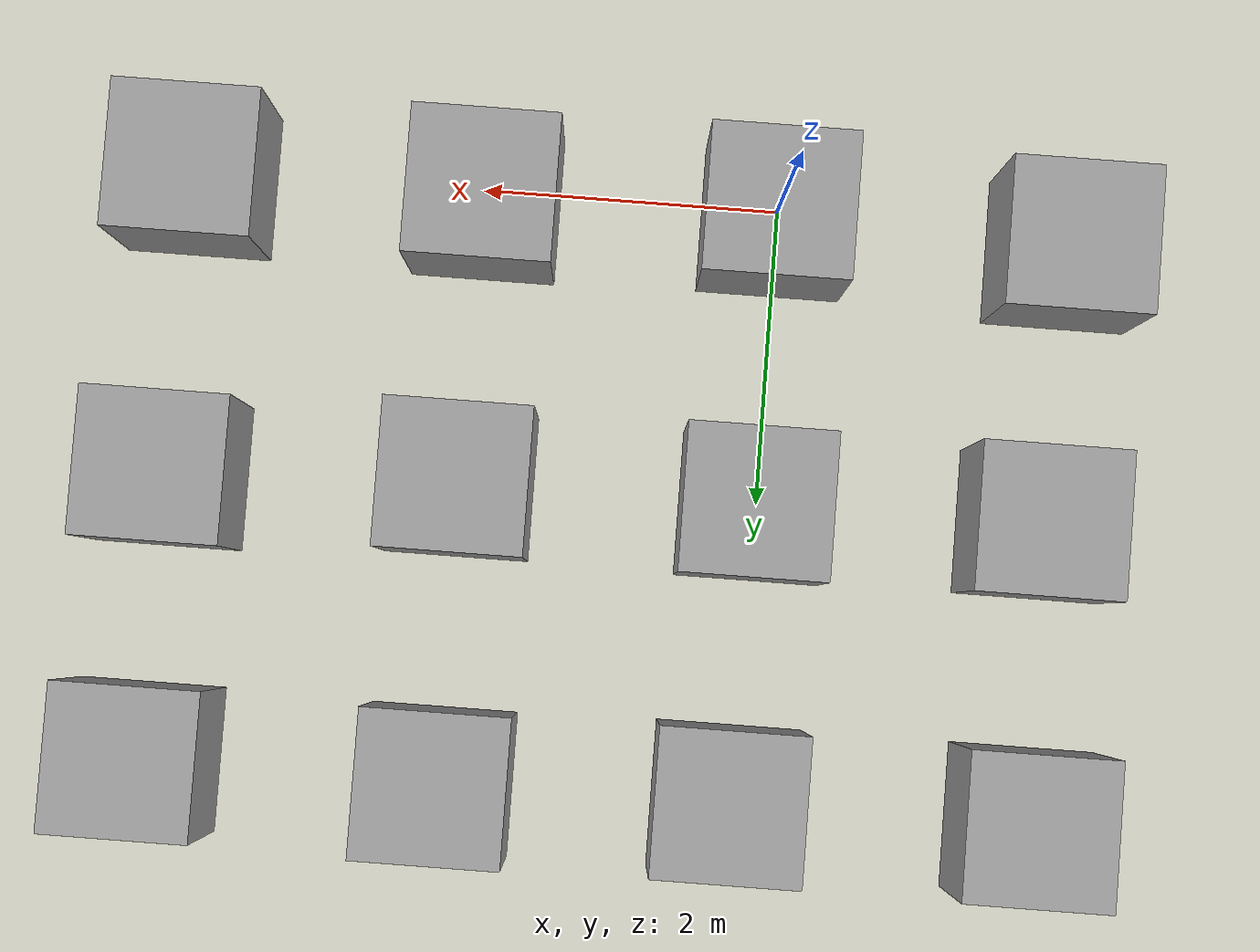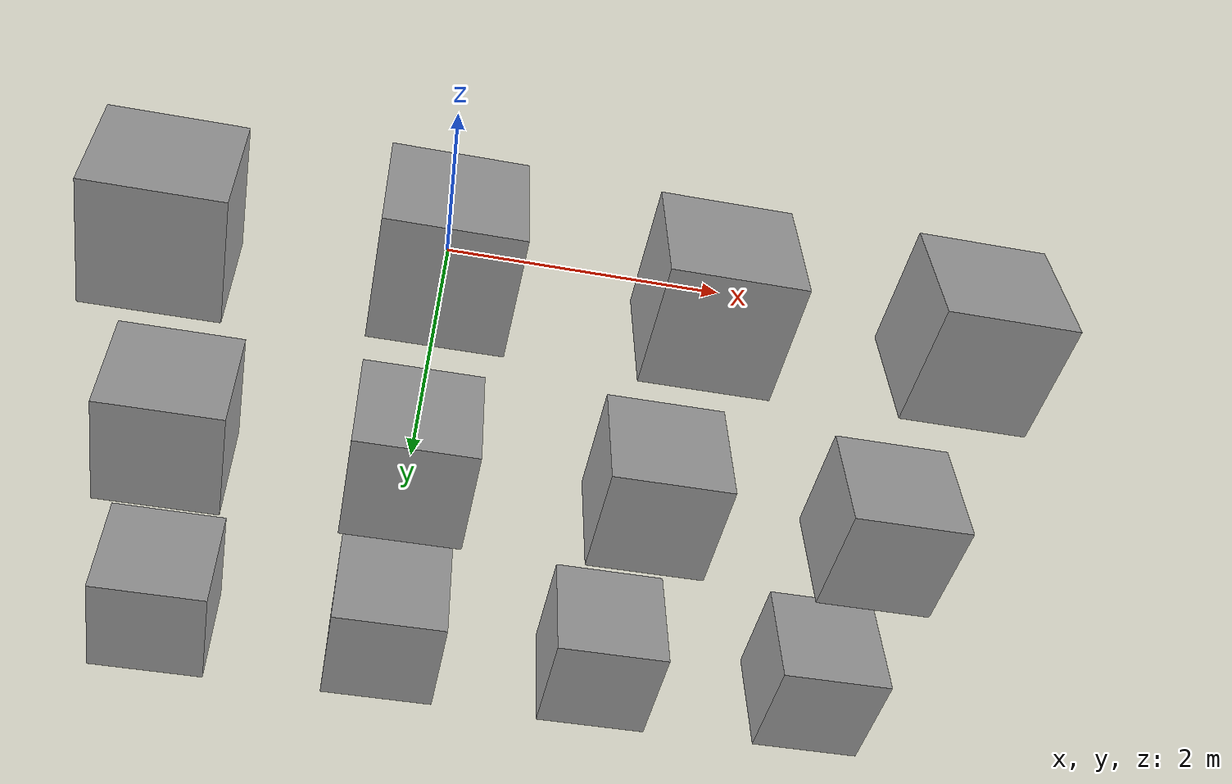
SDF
<?xml version='1.0'?>
<sdf version='1.6'>
  <model name='rnpillmining'>
    <link name='link'>
      <inertial>
        <mass>1</mass>
        <inertia>
          <ixx>0.166667</ixx>
          <ixy>0</ixy>
          <ixz>0</ixz>
          <iyy>0.166667</iyy>
          <iyz>0</iyz>
          <izz>0.166667</izz>
        </inertia>
        <pose frame=''>0 0 0 0 -0 0</pose>
      </inertial>
      <self_collide>0</self_collide>
      <enable_wind>0</enable_wind>
      <kinematic>0</kinematic>
      <pose frame=''>0 0 0 0 -0 0</pose>
      <gravity>1</gravity>
      <visual name='visual'>
        <geometry>
          <box>
            <size>1 1 1</size>
          </box>
        </geometry>
        <material>
          <script>
            <name>Gazebo/Grey</name>
            <uri>file://media/materials/scripts/gazebo.material</uri>
          </script>
          <shader type='vertex'>
            <normal_map>__default__</normal_map>
          </shader>
        </material>
        <pose frame=''>0 0 0 0 -0 0</pose>
        <transparency>0</transparency>
        <cast_shadows>1</cast_shadows>
      </visual>
      <collision name='collision'>
        <laser_retro>0</laser_retro>
        <max_contacts>10</max_contacts>
        <pose frame=''>0 0 0 0 -0 0</pose>
        <geometry>
          <box>
            <size>1 1 1</size>
          </box>
        </geometry>
        <surface>
          <friction>
            <ode>
              <mu>1</mu>
              <mu2>1</mu2>
              <fdir1>0 0 0</fdir1>
              <slip1>0</slip1>
              <slip2>0</slip2>
            </ode>
            <torsional>
              <coefficient>1</coefficient>
              <patch_radius>0</patch_radius>
              <surface_radius>0</surface_radius>
              <use_patch_radius>1</use_patch_radius>
              <ode>
                <slip>0</slip>
              </ode>
            </torsional>
          </friction>
          <bounce>
            <restitution_coefficient>0</restitution_coefficient>
            <threshold>1e+06</threshold>
          </bounce>
          <contact>
            <collide_without_contact>0</collide_without_contact>
            <collide_without_contact_bitmask>1</collide_without_contact_bitmask>
            <collide_bitmask>1</collide_bitmask>
            <ode>
              <soft_cfm>0</soft_cfm>
              <soft_erp>0.2</soft_erp>
              <kp>1e+13</kp>
              <kd>1</kd>
              <max_vel>0.01</max_vel>
              <min_depth>0</min_depth>
            </ode>
            <bullet>
              <split_impulse>1</split_impulse>
              <split_impulse_penetration_threshold>-0.01</split_impulse_penetration_threshold>
              <soft_cfm>0</soft_cfm>
              <soft_erp>0.2</soft_erp>
              <kp>1e+13</kp>
              <kd>1</kd>
            </bullet>
          </contact>
        </surface>
      </collision>
    </link>
    <link name='link_clone'>
      <inertial>
        <mass>1</mass>
        <inertia>
          <ixx>0.166667</ixx>
          <ixy>0</ixy>
          <ixz>0</ixz>
          <iyy>0.166667</iyy>
          <iyz>0</iyz>
          <izz>0.166667</izz>
        </inertia>
        <pose frame=''>0 0 0 0 -0 0</pose>
      </inertial>
      <self_collide>0</self_collide>
      <enable_wind>0</enable_wind>
      <kinematic>0</kinematic>
      <pose frame=''>0.009532 2.00132 0 0 -0 0</pose>
      <gravity>1</gravity>
      <visual name='visual'>
        <geometry>
          <box>
            <size>1 1 1</size>
          </box>
        </geometry>
        <material>
          <script>
            <name>Gazebo/Grey</name>
            <uri>file://media/materials/scripts/gazebo.material</uri>
          </script>
          <shader type='vertex'>
            <normal_map>__default__</normal_map>
          </shader>
        </material>
        <pose frame=''>0 0 0 0 -0 0</pose>
        <transparency>0</transparency>
        <cast_shadows>1</cast_shadows>
      </visual>
      <collision name='collision'>
        <laser_retro>0</laser_retro>
        <max_contacts>10</max_contacts>
        <pose frame=''>0 0 0 0 -0 0</pose>
        <geometry>
          <box>
            <size>1 1 1</size>
          </box>
        </geometry>
        <surface>
          <friction>
            <ode>
              <mu>1</mu>
              <mu2>1</mu2>
              <fdir1>0 0 0</fdir1>
              <slip1>0</slip1>
              <slip2>0</slip2>
            </ode>
            <torsional>
              <coefficient>1</coefficient>
              <patch_radius>0</patch_radius>
              <surface_radius>0</surface_radius>
              <use_patch_radius>1</use_patch_radius>
              <ode>
                <slip>0</slip>
              </ode>
            </torsional>
          </friction>
          <bounce>
            <restitution_coefficient>0</restitution_coefficient>
            <threshold>1e+06</threshold>
          </bounce>
          <contact>
            <collide_without_contact>0</collide_without_contact>
            <collide_without_contact_bitmask>1</collide_without_contact_bitmask>
            <collide_bitmask>1</collide_bitmask>
            <ode>
              <soft_cfm>0</soft_cfm>
              <soft_erp>0.2</soft_erp>
              <kp>1e+13</kp>
              <kd>1</kd>
              <max_vel>0.01</max_vel>
              <min_depth>0</min_depth>
            </ode>
            <bullet>
              <split_impulse>1</split_impulse>
              <split_impulse_penetration_threshold>-0.01</split_impulse_penetration_threshold>
              <soft_cfm>0</soft_cfm>
              <soft_erp>0.2</soft_erp>
              <kp>1e+13</kp>
              <kd>1</kd>
            </bullet>
          </contact>
        </surface>
      </collision>
    </link>
    <link name='link_clone_0'>
      <inertial>
        <mass>1</mass>
        <inertia>
          <ixx>0.166667</ixx>
          <ixy>0</ixy>
          <ixz>0</ixz>
          <iyy>0.166667</iyy>
          <iyz>0</iyz>
          <izz>0.166667</izz>
        </inertia>
        <pose frame=''>0 0 0 0 -0 0</pose>
      </inertial>
      <self_collide>0</self_collide>
      <enable_wind>0</enable_wind>
      <kinematic>0</kinematic>
      <pose frame=''>0.051159 4.01041 0 0 -0 0</pose>
      <gravity>1</gravity>
      <visual name='visual'>
        <geometry>
          <box>
            <size>1 1 1</size>
          </box>
        </geometry>
        <material>
          <script>
            <name>Gazebo/Grey</name>
            <uri>file://media/materials/scripts/gazebo.material</uri>
          </script>
          <shader type='vertex'>
            <normal_map>__default__</normal_map>
          </shader>
        </material>
        <pose frame=''>0 0 0 0 -0 0</pose>
        <transparency>0</transparency>
        <cast_shadows>1</cast_shadows>
      </visual>
      <collision name='collision'>
        <laser_retro>0</laser_retro>
        <max_contacts>10</max_contacts>
        <pose frame=''>0 0 0 0 -0 0</pose>
        <geometry>
          <box>
            <size>1 1 1</size>
          </box>
        </geometry>
        <surface>
          <friction>
            <ode>
              <mu>1</mu>
              <mu2>1</mu2>
              <fdir1>0 0 0</fdir1>
              <slip1>0</slip1>
              <slip2>0</slip2>
            </ode>
            <torsional>
              <coefficient>1</coefficient>
              <patch_radius>0</patch_radius>
              <surface_radius>0</surface_radius>
              <use_patch_radius>1</use_patch_radius>
              <ode>
                <slip>0</slip>
              </ode>
            </torsional>
          </friction>
          <bounce>
            <restitution_coefficient>0</restitution_coefficient>
            <threshold>1e+06</threshold>
          </bounce>
          <contact>
            <collide_without_contact>0</collide_without_contact>
            <collide_without_contact_bitmask>1</collide_without_contact_bitmask>
            <collide_bitmask>1</collide_bitmask>
            <ode>
              <soft_cfm>0</soft_cfm>
              <soft_erp>0.2</soft_erp>
              <kp>1e+13</kp>
              <kd>1</kd>
              <max_vel>0.01</max_vel>
              <min_depth>0</min_depth>
            </ode>
            <bullet>
              <split_impulse>1</split_impulse>
              <split_impulse_penetration_threshold>-0.01</split_impulse_penetration_threshold>
              <soft_cfm>0</soft_cfm>
              <soft_erp>0.2</soft_erp>
              <kp>1e+13</kp>
              <kd>1</kd>
            </bullet>
          </contact>
        </surface>
      </collision>
    </link>
    <link name='link_clone_1'>
      <inertial>
        <mass>1</mass>
        <inertia>
          <ixx>0.166667</ixx>
          <ixy>0</ixy>
          <ixz>0</ixz>
          <iyy>0.166667</iyy>
          <iyz>0</iyz>
          <izz>0.166667</izz>
        </inertia>
        <pose frame=''>0 0 0 0 -0 0</pose>
      </inertial>
      <self_collide>0</self_collide>
      <enable_wind>0</enable_wind>
      <kinematic>0</kinematic>
      <pose frame=''>1.99689 0.032403 -0 0 -0 0</pose>
      <gravity>1</gravity>
      <visual name='visual'>
        <geometry>
          <box>
            <size>1 1 1</size>
          </box>
        </geometry>
        <material>
          <script>
            <name>Gazebo/Grey</name>
            <uri>file://media/materials/scripts/gazebo.material</uri>
          </script>
          <shader type='vertex'>
            <normal_map>__default__</normal_map>
          </shader>
        </material>
        <pose frame=''>0 0 0 0 -0 0</pose>
        <transparency>0</transparency>
        <cast_shadows>1</cast_shadows>
      </visual>
      <collision name='collision'>
        <laser_retro>0</laser_retro>
        <max_contacts>10</max_contacts>
        <pose frame=''>0 0 0 0 -0 0</pose>
        <geometry>
          <box>
            <size>1 1 1</size>
          </box>
        </geometry>
        <surface>
          <friction>
            <ode>
              <mu>1</mu>
              <mu2>1</mu2>
              <fdir1>0 0 0</fdir1>
              <slip1>0</slip1>
              <slip2>0</slip2>
            </ode>
            <torsional>
              <coefficient>1</coefficient>
              <patch_radius>0</patch_radius>
              <surface_radius>0</surface_radius>
              <use_patch_radius>1</use_patch_radius>
              <ode>
                <slip>0</slip>
              </ode>
            </torsional>
          </friction>
          <bounce>
            <restitution_coefficient>0</restitution_coefficient>
            <threshold>1e+06</threshold>
          </bounce>
          <contact>
            <collide_without_contact>0</collide_without_contact>
            <collide_without_contact_bitmask>1</collide_without_contact_bitmask>
            <collide_bitmask>1</collide_bitmask>
            <ode>
              <soft_cfm>0</soft_cfm>
              <soft_erp>0.2</soft_erp>
              <kp>1e+13</kp>
              <kd>1</kd>
              <max_vel>0.01</max_vel>
              <min_depth>0</min_depth>
            </ode>
            <bullet>
              <split_impulse>1</split_impulse>
              <split_impulse_penetration_threshold>-0.01</split_impulse_penetration_threshold>
              <soft_cfm>0</soft_cfm>
              <soft_erp>0.2</soft_erp>
              <kp>1e+13</kp>
              <kd>1</kd>
            </bullet>
          </contact>
        </surface>
      </collision>
    </link>
    <link name='link_clone_2'>
      <inertial>
        <mass>1</mass>
        <inertia>
          <ixx>0.166667</ixx>
          <ixy>0</ixy>
          <ixz>0</ixz>
          <iyy>0.166667</iyy>
          <iyz>0</iyz>
          <izz>0.166667</izz>
        </inertia>
        <pose frame=''>0 0 0 0 -0 0</pose>
      </inertial>
      <self_collide>0</self_collide>
      <enable_wind>0</enable_wind>
      <kinematic>0</kinematic>
      <pose frame=''>2.02921 1.98774 0 0 -0 0</pose>
      <gravity>1</gravity>
      <visual name='visual'>
        <geometry>
          <box>
            <size>1 1 1</size>
          </box>
        </geometry>
        <material>
          <script>
            <name>Gazebo/Grey</name>
            <uri>file://media/materials/scripts/gazebo.material</uri>
          </script>
          <shader type='vertex'>
            <normal_map>__default__</normal_map>
          </shader>
        </material>
        <pose frame=''>0 0 0 0 -0 0</pose>
        <transparency>0</transparency>
        <cast_shadows>1</cast_shadows>
      </visual>
      <collision name='collision'>
        <laser_retro>0</laser_retro>
        <max_contacts>10</max_contacts>
        <pose frame=''>0 0 0 0 -0 0</pose>
        <geometry>
          <box>
            <size>1 1 1</size>
          </box>
        </geometry>
        <surface>
          <friction>
            <ode>
              <mu>1</mu>
              <mu2>1</mu2>
              <fdir1>0 0 0</fdir1>
              <slip1>0</slip1>
              <slip2>0</slip2>
            </ode>
            <torsional>
              <coefficient>1</coefficient>
              <patch_radius>0</patch_radius>
              <surface_radius>0</surface_radius>
              <use_patch_radius>1</use_patch_radius>
              <ode>
                <slip>0</slip>
              </ode>
            </torsional>
          </friction>
          <bounce>
            <restitution_coefficient>0</restitution_coefficient>
            <threshold>1e+06</threshold>
          </bounce>
          <contact>
            <collide_without_contact>0</collide_without_contact>
            <collide_without_contact_bitmask>1</collide_without_contact_bitmask>
            <collide_bitmask>1</collide_bitmask>
            <ode>
              <soft_cfm>0</soft_cfm>
              <soft_erp>0.2</soft_erp>
              <kp>1e+13</kp>
              <kd>1</kd>
              <max_vel>0.01</max_vel>
              <min_depth>0</min_depth>
            </ode>
            <bullet>
              <split_impulse>1</split_impulse>
              <split_impulse_penetration_threshold>-0.01</split_impulse_penetration_threshold>
              <soft_cfm>0</soft_cfm>
              <soft_erp>0.2</soft_erp>
              <kp>1e+13</kp>
              <kd>1</kd>
            </bullet>
          </contact>
        </surface>
      </collision>
    </link>
    <link name='link_clone_3'>
      <inertial>
        <mass>1</mass>
        <inertia>
          <ixx>0.166667</ixx>
          <ixy>0</ixy>
          <ixz>0</ixz>
          <iyy>0.166667</iyy>
          <iyz>0</iyz>
          <izz>0.166667</izz>
        </inertia>
        <pose frame=''>0 0 0 0 -0 0</pose>
      </inertial>
      <self_collide>0</self_collide>
      <enable_wind>0</enable_wind>
      <kinematic>0</kinematic>
      <pose frame=''>2.01726 4.0372 0 0 -0 0</pose>
      <gravity>1</gravity>
      <visual name='visual'>
        <geometry>
          <box>
            <size>1 1 1</size>
          </box>
        </geometry>
        <material>
          <script>
            <name>Gazebo/Grey</name>
            <uri>file://media/materials/scripts/gazebo.material</uri>
          </script>
          <shader type='vertex'>
            <normal_map>__default__</normal_map>
          </shader>
        </material>
        <pose frame=''>0 0 0 0 -0 0</pose>
        <transparency>0</transparency>
        <cast_shadows>1</cast_shadows>
      </visual>
      <collision name='collision'>
        <laser_retro>0</laser_retro>
        <max_contacts>10</max_contacts>
        <pose frame=''>0 0 0 0 -0 0</pose>
        <geometry>
          <box>
            <size>1 1 1</size>
          </box>
        </geometry>
        <surface>
          <friction>
            <ode>
              <mu>1</mu>
              <mu2>1</mu2>
              <fdir1>0 0 0</fdir1>
              <slip1>0</slip1>
              <slip2>0</slip2>
            </ode>
            <torsional>
              <coefficient>1</coefficient>
              <patch_radius>0</patch_radius>
              <surface_radius>0</surface_radius>
              <use_patch_radius>1</use_patch_radius>
              <ode>
                <slip>0</slip>
              </ode>
            </torsional>
          </friction>
          <bounce>
            <restitution_coefficient>0</restitution_coefficient>
            <threshold>1e+06</threshold>
          </bounce>
          <contact>
            <collide_without_contact>0</collide_without_contact>
            <collide_without_contact_bitmask>1</collide_without_contact_bitmask>
            <collide_bitmask>1</collide_bitmask>
            <ode>
              <soft_cfm>0</soft_cfm>
              <soft_erp>0.2</soft_erp>
              <kp>1e+13</kp>
              <kd>1</kd>
              <max_vel>0.01</max_vel>
              <min_depth>0</min_depth>
            </ode>
            <bullet>
              <split_impulse>1</split_impulse>
              <split_impulse_penetration_threshold>-0.01</split_impulse_penetration_threshold>
              <soft_cfm>0</soft_cfm>
              <soft_erp>0.2</soft_erp>
              <kp>1e+13</kp>
              <kd>1</kd>
            </bullet>
          </contact>
        </surface>
      </collision>
    </link>
    <link name='link_clone_4'>
      <inertial>
        <mass>1</mass>
        <inertia>
          <ixx>0.166667</ixx>
          <ixy>0</ixy>
          <ixz>0</ixz>
          <iyy>0.166667</iyy>
          <iyz>0</iyz>
          <izz>0.166667</izz>
        </inertia>
        <pose frame=''>0 0 0 0 -0 0</pose>
      </inertial>
      <self_collide>0</self_collide>
      <enable_wind>0</enable_wind>
      <kinematic>0</kinematic>
      <pose frame=''>4.05224 4.01926 0 0 -0 0</pose>
      <gravity>1</gravity>
      <visual name='visual'>
        <geometry>
          <box>
            <size>1 1 1</size>
          </box>
        </geometry>
        <material>
          <script>
            <name>Gazebo/Grey</name>
            <uri>file://media/materials/scripts/gazebo.material</uri>
          </script>
          <shader type='vertex'>
            <normal_map>__default__</normal_map>
          </shader>
        </material>
        <pose frame=''>0 0 0 0 -0 0</pose>
        <transparency>0</transparency>
        <cast_shadows>1</cast_shadows>
      </visual>
      <collision name='collision'>
        <laser_retro>0</laser_retro>
        <max_contacts>10</max_contacts>
        <pose frame=''>0 0 0 0 -0 0</pose>
        <geometry>
          <box>
            <size>1 1 1</size>
          </box>
        </geometry>
        <surface>
          <friction>
            <ode>
              <mu>1</mu>
              <mu2>1</mu2>
              <fdir1>0 0 0</fdir1>
              <slip1>0</slip1>
              <slip2>0</slip2>
            </ode>
            <torsional>
              <coefficient>1</coefficient>
              <patch_radius>0</patch_radius>
              <surface_radius>0</surface_radius>
              <use_patch_radius>1</use_patch_radius>
              <ode>
                <slip>0</slip>
              </ode>
            </torsional>
          </friction>
          <bounce>
            <restitution_coefficient>0</restitution_coefficient>
            <threshold>1e+06</threshold>
          </bounce>
          <contact>
            <collide_without_contact>0</collide_without_contact>
            <collide_without_contact_bitmask>1</collide_without_contact_bitmask>
            <collide_bitmask>1</collide_bitmask>
            <ode>
              <soft_cfm>0</soft_cfm>
              <soft_erp>0.2</soft_erp>
              <kp>1e+13</kp>
              <kd>1</kd>
              <max_vel>0.01</max_vel>
              <min_depth>0</min_depth>
            </ode>
            <bullet>
              <split_impulse>1</split_impulse>
              <split_impulse_penetration_threshold>-0.01</split_impulse_penetration_threshold>
              <soft_cfm>0</soft_cfm>
              <soft_erp>0.2</soft_erp>
              <kp>1e+13</kp>
              <kd>1</kd>
            </bullet>
          </contact>
        </surface>
      </collision>
    </link>
    <link name='link_clone_5'>
      <inertial>
        <mass>1</mass>
        <inertia>
          <ixx>0.166667</ixx>
          <ixy>0</ixy>
          <ixz>0</ixz>
          <iyy>0.166667</iyy>
          <iyz>0</iyz>
          <izz>0.166667</izz>
        </inertia>
        <pose frame=''>0 0 0 0 -0 0</pose>
      </inertial>
      <self_collide>0</self_collide>
      <enable_wind>0</enable_wind>
      <kinematic>0</kinematic>
      <pose frame=''>4.02611 2.06432 0 0 -0 0</pose>
      <gravity>1</gravity>
      <visual name='visual'>
        <geometry>
          <box>
            <size>1 1 1</size>
          </box>
        </geometry>
        <material>
          <script>
            <name>Gazebo/Grey</name>
            <uri>file://media/materials/scripts/gazebo.material</uri>
          </script>
          <shader type='vertex'>
            <normal_map>__default__</normal_map>
          </shader>
        </material>
        <pose frame=''>0 0 0 0 -0 0</pose>
        <transparency>0</transparency>
        <cast_shadows>1</cast_shadows>
      </visual>
      <collision name='collision'>
        <laser_retro>0</laser_retro>
        <max_contacts>10</max_contacts>
        <pose frame=''>0 0 0 0 -0 0</pose>
        <geometry>
          <box>
            <size>1 1 1</size>
          </box>
        </geometry>
        <surface>
          <friction>
            <ode>
              <mu>1</mu>
              <mu2>1</mu2>
              <fdir1>0 0 0</fdir1>
              <slip1>0</slip1>
              <slip2>0</slip2>
            </ode>
            <torsional>
              <coefficient>1</coefficient>
              <patch_radius>0</patch_radius>
              <surface_radius>0</surface_radius>
              <use_patch_radius>1</use_patch_radius>
              <ode>
                <slip>0</slip>
              </ode>
            </torsional>
          </friction>
          <bounce>
            <restitution_coefficient>0</restitution_coefficient>
            <threshold>1e+06</threshold>
          </bounce>
          <contact>
            <collide_without_contact>0</collide_without_contact>
            <collide_without_contact_bitmask>1</collide_without_contact_bitmask>
            <collide_bitmask>1</collide_bitmask>
            <ode>
              <soft_cfm>0</soft_cfm>
              <soft_erp>0.2</soft_erp>
              <kp>1e+13</kp>
              <kd>1</kd>
              <max_vel>0.01</max_vel>
              <min_depth>0</min_depth>
            </ode>
            <bullet>
              <split_impulse>1</split_impulse>
              <split_impulse_penetration_threshold>-0.01</split_impulse_penetration_threshold>
              <soft_cfm>0</soft_cfm>
              <soft_erp>0.2</soft_erp>
              <kp>1e+13</kp>
              <kd>1</kd>
            </bullet>
          </contact>
        </surface>
      </collision>
    </link>
    <link name='link_clone_6'>
      <inertial>
        <mass>1</mass>
        <inertia>
          <ixx>0.166667</ixx>
          <ixy>0</ixy>
          <ixz>0</ixz>
          <iyy>0.166667</iyy>
          <iyz>0</iyz>
          <izz>0.166667</izz>
        </inertia>
        <pose frame=''>0 0 0 0 -0 0</pose>
      </inertial>
      <self_collide>0</self_collide>
      <enable_wind>0</enable_wind>
      <kinematic>0</kinematic>
      <pose frame=''>3.99609 0.01299 -0 0 -0 0</pose>
      <gravity>1</gravity>
      <visual name='visual'>
        <geometry>
          <box>
            <size>1 1 1</size>
          </box>
        </geometry>
        <material>
          <script>
            <name>Gazebo/Grey</name>
            <uri>file://media/materials/scripts/gazebo.material</uri>
          </script>
          <shader type='vertex'>
            <normal_map>__default__</normal_map>
          </shader>
        </material>
        <pose frame=''>0 0 0 0 -0 0</pose>
        <transparency>0</transparency>
        <cast_shadows>1</cast_shadows>
      </visual>
      <collision name='collision'>
        <laser_retro>0</laser_retro>
        <max_contacts>10</max_contacts>
        <pose frame=''>0 0 0 0 -0 0</pose>
        <geometry>
          <box>
            <size>1 1 1</size>
          </box>
        </geometry>
        <surface>
          <friction>
            <ode>
              <mu>1</mu>
              <mu2>1</mu2>
              <fdir1>0 0 0</fdir1>
              <slip1>0</slip1>
              <slip2>0</slip2>
            </ode>
            <torsional>
              <coefficient>1</coefficient>
              <patch_radius>0</patch_radius>
              <surface_radius>0</surface_radius>
              <use_patch_radius>1</use_patch_radius>
              <ode>
                <slip>0</slip>
              </ode>
            </torsional>
          </friction>
          <bounce>
            <restitution_coefficient>0</restitution_coefficient>
            <threshold>1e+06</threshold>
          </bounce>
          <contact>
            <collide_without_contact>0</collide_without_contact>
            <collide_without_contact_bitmask>1</collide_without_contact_bitmask>
            <collide_bitmask>1</collide_bitmask>
            <ode>
              <soft_cfm>0</soft_cfm>
              <soft_erp>0.2</soft_erp>
              <kp>1e+13</kp>
              <kd>1</kd>
              <max_vel>0.01</max_vel>
              <min_depth>0</min_depth>
            </ode>
            <bullet>
              <split_impulse>1</split_impulse>
              <split_impulse_penetration_threshold>-0.01</split_impulse_penetration_threshold>
              <soft_cfm>0</soft_cfm>
              <soft_erp>0.2</soft_erp>
              <kp>1e+13</kp>
              <kd>1</kd>
            </bullet>
          </contact>
        </surface>
      </collision>
    </link>
    <link name='link_clone_7'>
      <inertial>
        <mass>1</mass>
        <inertia>
          <ixx>0.166667</ixx>
          <ixy>0</ixy>
          <ixz>0</ixz>
          <iyy>0.166667</iyy>
          <iyz>0</iyz>
          <izz>0.166667</izz>
        </inertia>
        <pose frame=''>0 0 0 0 -0 0</pose>
      </inertial>
      <self_collide>0</self_collide>
      <enable_wind>0</enable_wind>
      <kinematic>0</kinematic>
      <pose frame=''>-2.01209 0.076202 0 0 -0 0</pose>
      <gravity>1</gravity>
      <visual name='visual'>
        <geometry>
          <box>
            <size>1 1 1</size>
          </box>
        </geometry>
        <material>
          <script>
            <name>Gazebo/Grey</name>
            <uri>file://media/materials/scripts/gazebo.material</uri>
          </script>
          <shader type='vertex'>
            <normal_map>__default__</normal_map>
          </shader>
        </material>
        <pose frame=''>0 0 0 0 -0 0</pose>
        <transparency>0</transparency>
        <cast_shadows>1</cast_shadows>
      </visual>
      <collision name='collision'>
        <laser_retro>0</laser_retro>
        <max_contacts>10</max_contacts>
        <pose frame=''>0 0 0 0 -0 0</pose>
        <geometry>
          <box>
            <size>1 1 1</size>
          </box>
        </geometry>
        <surface>
          <friction>
            <ode>
              <mu>1</mu>
              <mu2>1</mu2>
              <fdir1>0 0 0</fdir1>
              <slip1>0</slip1>
              <slip2>0</slip2>
            </ode>
            <torsional>
              <coefficient>1</coefficient>
              <patch_radius>0</patch_radius>
              <surface_radius>0</surface_radius>
              <use_patch_radius>1</use_patch_radius>
              <ode>
                <slip>0</slip>
              </ode>
            </torsional>
          </friction>
          <bounce>
            <restitution_coefficient>0</restitution_coefficient>
            <threshold>1e+06</threshold>
          </bounce>
          <contact>
            <collide_without_contact>0</collide_without_contact>
            <collide_without_contact_bitmask>1</collide_without_contact_bitmask>
            <collide_bitmask>1</collide_bitmask>
            <ode>
              <soft_cfm>0</soft_cfm>
              <soft_erp>0.2</soft_erp>
              <kp>1e+13</kp>
              <kd>1</kd>
              <max_vel>0.01</max_vel>
              <min_depth>0</min_depth>
            </ode>
            <bullet>
              <split_impulse>1</split_impulse>
              <split_impulse_penetration_threshold>-0.01</split_impulse_penetration_threshold>
              <soft_cfm>0</soft_cfm>
              <soft_erp>0.2</soft_erp>
              <kp>1e+13</kp>
              <kd>1</kd>
            </bullet>
          </contact>
        </surface>
      </collision>
    </link>
    <link name='link_clone_8'>
      <inertial>
        <mass>1</mass>
        <inertia>
          <ixx>0.166667</ixx>
          <ixy>0</ixy>
          <ixz>0</ixz>
          <iyy>0.166667</iyy>
          <iyz>0</iyz>
          <izz>0.166667</izz>
        </inertia>
        <pose frame=''>0 0 0 0 -0 0</pose>
      </inertial>
      <self_collide>0</self_collide>
      <enable_wind>0</enable_wind>
      <kinematic>0</kinematic>
      <pose frame=''>-1.93356 1.97958 0 0 -0 0</pose>
      <gravity>1</gravity>
      <visual name='visual'>
        <geometry>
          <box>
            <size>1 1 1</size>
          </box>
        </geometry>
        <material>
          <script>
            <name>Gazebo/Grey</name>
            <uri>file://media/materials/scripts/gazebo.material</uri>
          </script>
          <shader type='vertex'>
            <normal_map>__default__</normal_map>
          </shader>
        </material>
        <pose frame=''>0 0 0 0 -0 0</pose>
        <transparency>0</transparency>
        <cast_shadows>1</cast_shadows>
      </visual>
      <collision name='collision'>
        <laser_retro>0</laser_retro>
        <max_contacts>10</max_contacts>
        <pose frame=''>0 0 0 0 -0 0</pose>
        <geometry>
          <box>
            <size>1 1 1</size>
          </box>
        </geometry>
        <surface>
          <friction>
            <ode>
              <mu>1</mu>
              <mu2>1</mu2>
              <fdir1>0 0 0</fdir1>
              <slip1>0</slip1>
              <slip2>0</slip2>
            </ode>
            <torsional>
              <coefficient>1</coefficient>
              <patch_radius>0</patch_radius>
              <surface_radius>0</surface_radius>
              <use_patch_radius>1</use_patch_radius>
              <ode>
                <slip>0</slip>
              </ode>
            </torsional>
          </friction>
          <bounce>
            <restitution_coefficient>0</restitution_coefficient>
            <threshold>1e+06</threshold>
          </bounce>
          <contact>
            <collide_without_contact>0</collide_without_contact>
            <collide_without_contact_bitmask>1</collide_without_contact_bitmask>
            <collide_bitmask>1</collide_bitmask>
            <ode>
              <soft_cfm>0</soft_cfm>
              <soft_erp>0.2</soft_erp>
              <kp>1e+13</kp>
              <kd>1</kd>
              <max_vel>0.01</max_vel>
              <min_depth>0</min_depth>
            </ode>
            <bullet>
              <split_impulse>1</split_impulse>
              <split_impulse_penetration_threshold>-0.01</split_impulse_penetration_threshold>
              <soft_cfm>0</soft_cfm>
              <soft_erp>0.2</soft_erp>
              <kp>1e+13</kp>
              <kd>1</kd>
            </bullet>
          </contact>
        </surface>
      </collision>
    </link>
    <link name='link_clone_9'>
      <inertial>
        <mass>1</mass>
        <inertia>
          <ixx>0.166667</ixx>
          <ixy>0</ixy>
          <ixz>0</ixz>
          <iyy>0.166667</iyy>
          <iyz>0</iyz>
          <izz>0.166667</izz>
        </inertia>
        <pose frame=''>0 0 0 0 -0 0</pose>
      </inertial>
      <self_collide>0</self_collide>
      <enable_wind>0</enable_wind>
      <kinematic>0</kinematic>
      <pose frame=''>-1.98579 4.01197 0 0 -0 0</pose>
      <gravity>1</gravity>
      <visual name='visual'>
        <geometry>
          <box>
            <size>1 1 1</size>
          </box>
        </geometry>
        <material>
          <script>
            <name>Gazebo/Grey</name>
            <uri>file://media/materials/scripts/gazebo.material</uri>
          </script>
          <shader type='vertex'>
            <normal_map>__default__</normal_map>
          </shader>
        </material>
        <pose frame=''>0 0 0 0 -0 0</pose>
        <transparency>0</transparency>
        <cast_shadows>1</cast_shadows>
      </visual>
      <collision name='collision'>
        <laser_retro>0</laser_retro>
        <max_contacts>10</max_contacts>
        <pose frame=''>0 0 0 0 -0 0</pose>
        <geometry>
          <box>
            <size>1 1 1</size>
          </box>
        </geometry>
        <surface>
          <friction>
            <ode>
              <mu>1</mu>
              <mu2>1</mu2>
              <fdir1>0 0 0</fdir1>
              <slip1>0</slip1>
              <slip2>0</slip2>
            </ode>
            <torsional>
              <coefficient>1</coefficient>
              <patch_radius>0</patch_radius>
              <surface_radius>0</surface_radius>
              <use_patch_radius>1</use_patch_radius>
              <ode>
                <slip>0</slip>
              </ode>
            </torsional>
          </friction>
          <bounce>
            <restitution_coefficient>0</restitution_coefficient>
            <threshold>1e+06</threshold>
          </bounce>
          <contact>
            <collide_without_contact>0</collide_without_contact>
            <collide_without_contact_bitmask>1</collide_without_contact_bitmask>
            <collide_bitmask>1</collide_bitmask>
            <ode>
              <soft_cfm>0</soft_cfm>
              <soft_erp>0.2</soft_erp>
              <kp>1e+13</kp>
              <kd>1</kd>
              <max_vel>0.01</max_vel>
              <min_depth>0</min_depth>
            </ode>
            <bullet>
              <split_impulse>1</split_impulse>
              <split_impulse_penetration_threshold>-0.01</split_impulse_penetration_threshold>
              <soft_cfm>0</soft_cfm>
              <soft_erp>0.2</soft_erp>
              <kp>1e+13</kp>
              <kd>1</kd>
            </bullet>
          </contact>
        </surface>
      </collision>
    </link>
    <static>1</static>
    <allow_auto_disable>1</allow_auto_disable>
  </model>
</sdf>
